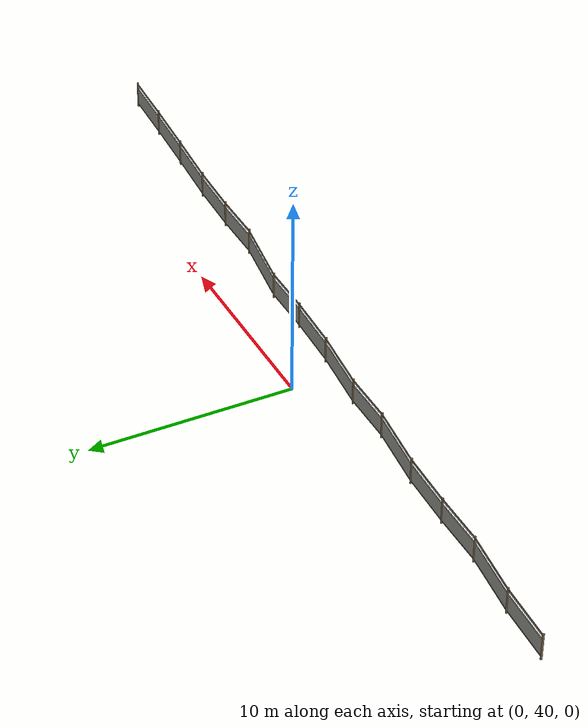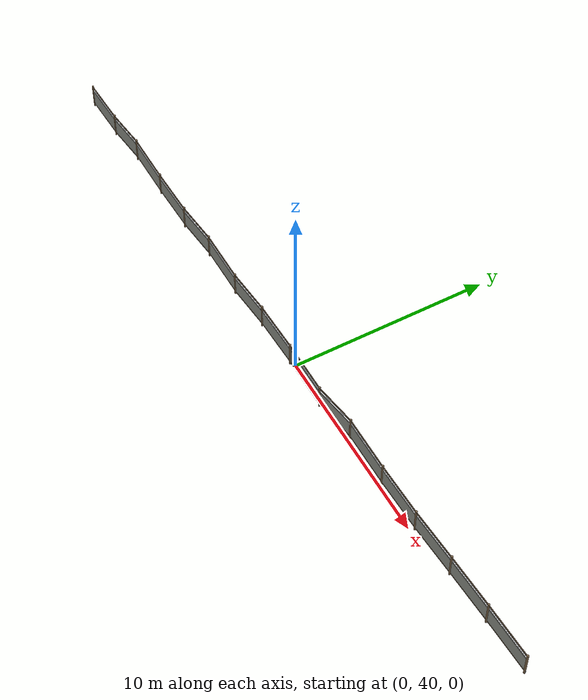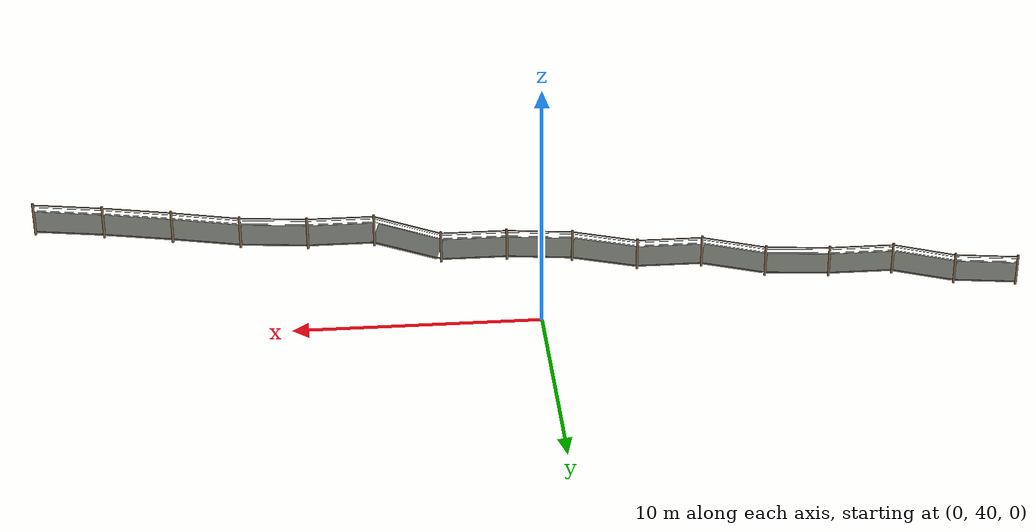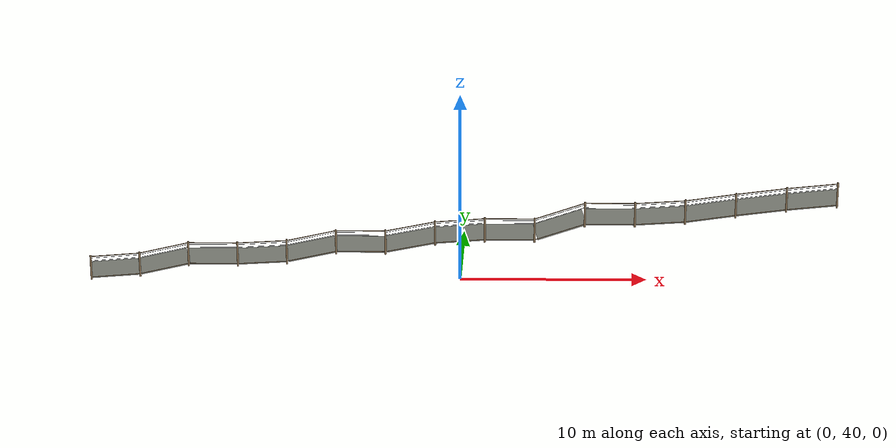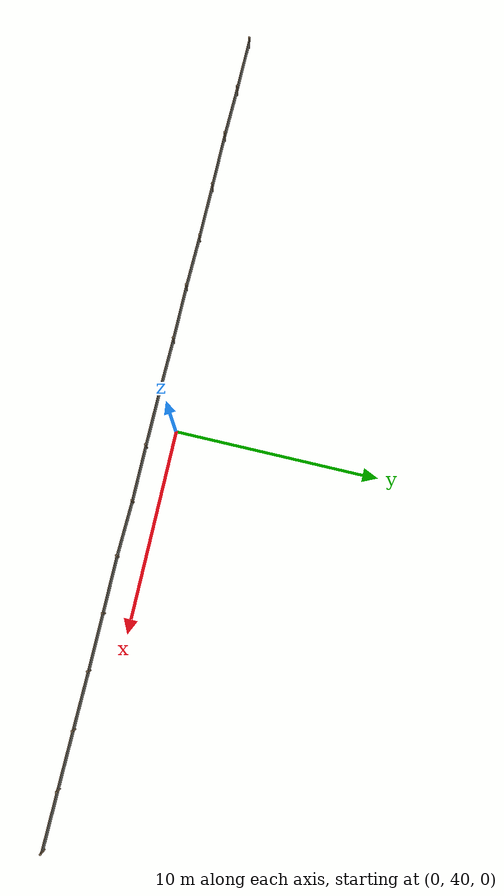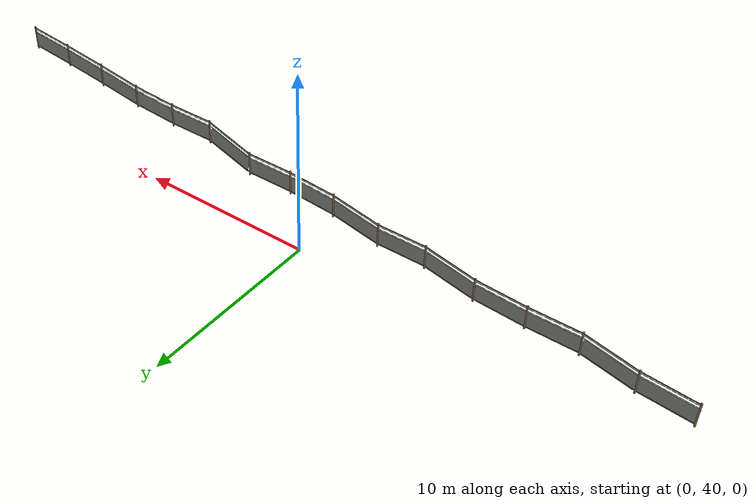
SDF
<sdf version="1.9">
 <world name="orchard_10x41">
  <model name="fence_N">
   <static>true</static>
   <link name="link">
    <visual name="post_1">
     <pose>-19.750 39.000 0.771 0.0000 0.0000 0.0000</pose>
     <geometry><cylinder><radius>0.0500</radius><length>1.3500</length></cylinder></geometry>
     <material>
      <ambient>0.420 0.340 0.240 1</ambient>
      <diffuse>0.462 0.374 0.264 1</diffuse>
      <specular>0.126 0.102 0.072 1</specular>
     </material>
     <plugin filename="gz-sim-label-system" name="gz::sim::systems::Label"><label>60</label></plugin>
    </visual>
    <visual name="post_2">
     <pose>-17.117 39.000 0.981 0.0000 0.0000 0.0000</pose>
     <geometry><cylinder><radius>0.0500</radius><length>1.3500</length></cylinder></geometry>
     <material>
      <ambient>0.420 0.340 0.240 1</ambient>
      <diffuse>0.462 0.374 0.264 1</diffuse>
      <specular>0.126 0.102 0.072 1</specular>
     </material>
     <plugin filename="gz-sim-label-system" name="gz::sim::systems::Label"><label>60</label></plugin>
    </visual>
    <visual name="post_3">
     <pose>-14.483 39.000 1.572 0.0000 0.0000 0.0000</pose>
     <geometry><cylinder><radius>0.0500</radius><length>1.3500</length></cylinder></geometry>
     <material>
      <ambient>0.420 0.340 0.240 1</ambient>
      <diffuse>0.462 0.374 0.264 1</diffuse>
      <specular>0.126 0.102 0.072 1</specular>
     </material>
     <plugin filename="gz-sim-label-system" name="gz::sim::systems::Label"><label>60</label></plugin>
    </visual>
    <visual name="post_4">
     <pose>-11.850 39.000 1.572 0.0000 0.0000 0.0000</pose>
     <geometry><cylinder><radius>0.0500</radius><length>1.3500</length></cylinder></geometry>
     <material>
      <ambient>0.420 0.340 0.240 1</ambient>
      <diffuse>0.462 0.374 0.264 1</diffuse>
      <specular>0.126 0.102 0.072 1</specular>
     </material>
     <plugin filename="gz-sim-label-system" name="gz::sim::systems::Label"><label>60</label></plugin>
    </visual>
    <visual name="post_5">
     <pose>-9.217 39.000 1.723 0.0000 0.0000 0.0000</pose>
     <geometry><cylinder><radius>0.0500</radius><length>1.3500</length></cylinder></geometry>
     <material>
      <ambient>0.420 0.340 0.240 1</ambient>
      <diffuse>0.462 0.374 0.264 1</diffuse>
      <specular>0.126 0.102 0.072 1</specular>
     </material>
     <plugin filename="gz-sim-label-system" name="gz::sim::systems::Label"><label>60</label></plugin>
    </visual>
    <visual name="post_6">
     <pose>-6.583 39.000 2.285 0.0000 0.0000 0.0000</pose>
     <geometry><cylinder><radius>0.0500</radius><length>1.3500</length></cylinder></geometry>
     <material>
      <ambient>0.420 0.340 0.240 1</ambient>
      <diffuse>0.462 0.374 0.264 1</diffuse>
      <specular>0.126 0.102 0.072 1</specular>
     </material>
     <plugin filename="gz-sim-label-system" name="gz::sim::systems::Label"><label>60</label></plugin>
    </visual>
    <visual name="post_7">
     <pose>-3.950 39.000 2.286 0.0000 0.0000 0.0000</pose>
     <geometry><cylinder><radius>0.0500</radius><length>1.3500</length></cylinder></geometry>
     <material>
      <ambient>0.420 0.340 0.240 1</ambient>
      <diffuse>0.462 0.374 0.264 1</diffuse>
      <specular>0.126 0.102 0.072 1</specular>
     </material>
     <plugin filename="gz-sim-label-system" name="gz::sim::systems::Label"><label>60</label></plugin>
    </visual>
    <visual name="post_8">
     <pose>-1.317 39.000 2.797 0.0000 0.0000 0.0000</pose>
     <geometry><cylinder><radius>0.0500</radius><length>1.3500</length></cylinder></geometry>
     <material>
      <ambient>0.420 0.340 0.240 1</ambient>
      <diffuse>0.462 0.374 0.264 1</diffuse>
      <specular>0.126 0.102 0.072 1</specular>
     </material>
     <plugin filename="gz-sim-label-system" name="gz::sim::systems::Label"><label>60</label></plugin>
    </visual>
    <visual name="post_9">
     <pose>1.317 39.000 2.985 0.0000 0.0000 0.0000</pose>
     <geometry><cylinder><radius>0.0500</radius><length>1.3500</length></cylinder></geometry>
     <material>
      <ambient>0.420 0.340 0.240 1</ambient>
      <diffuse>0.462 0.374 0.264 1</diffuse>
      <specular>0.126 0.102 0.072 1</specular>
     </material>
     <plugin filename="gz-sim-label-system" name="gz::sim::systems::Label"><label>60</label></plugin>
    </visual>
    <visual name="post_10">
     <pose>3.950 39.000 2.986 0.0000 0.0000 0.0000</pose>
     <geometry><cylinder><radius>0.0500</radius><length>1.3500</length></cylinder></geometry>
     <material>
      <ambient>0.420 0.340 0.240 1</ambient>
      <diffuse>0.462 0.374 0.264 1</diffuse>
      <specular>0.126 0.102 0.072 1</specular>
     </material>
     <plugin filename="gz-sim-label-system" name="gz::sim::systems::Label"><label>60</label></plugin>
    </visual>
    <visual name="post_11">
     <pose>6.583 39.000 3.855 0.0000 0.0000 0.0000</pose>
     <geometry><cylinder><radius>0.0500</radius><length>1.3500</length></cylinder></geometry>
     <material>
      <ambient>0.420 0.340 0.240 1</ambient>
      <diffuse>0.462 0.374 0.264 1</diffuse>
      <specular>0.126 0.102 0.072 1</specular>
     </material>
     <plugin filename="gz-sim-label-system" name="gz::sim::systems::Label"><label>60</label></plugin>
    </visual>
    <visual name="post_12">
     <pose>9.217 39.000 3.855 0.0000 0.0000 0.0000</pose>
     <geometry><cylinder><radius>0.0500</radius><length>1.3500</length></cylinder></geometry>
     <material>
      <ambient>0.420 0.340 0.240 1</ambient>
      <diffuse>0.462 0.374 0.264 1</diffuse>
      <specular>0.126 0.102 0.072 1</specular>
     </material>
     <plugin filename="gz-sim-label-system" name="gz::sim::systems::Label"><label>60</label></plugin>
    </visual>
    <visual name="post_13">
     <pose>11.850 39.000 4.018 0.0000 0.0000 0.0000</pose>
     <geometry><cylinder><radius>0.0500</radius><length>1.3500</length></cylinder></geometry>
     <material>
      <ambient>0.420 0.340 0.240 1</ambient>
      <diffuse>0.462 0.374 0.264 1</diffuse>
      <specular>0.126 0.102 0.072 1</specular>
     </material>
     <plugin filename="gz-sim-label-system" name="gz::sim::systems::Label"><label>60</label></plugin>
    </visual>
    <visual name="post_14">
     <pose>14.483 39.000 4.386 0.0000 0.0000 0.0000</pose>
     <geometry><cylinder><radius>0.0500</radius><length>1.3500</length></cylinder></geometry>
     <material>
      <ambient>0.420 0.340 0.240 1</ambient>
      <diffuse>0.462 0.374 0.264 1</diffuse>
      <specular>0.126 0.102 0.072 1</specular>
     </material>
     <plugin filename="gz-sim-label-system" name="gz::sim::systems::Label"><label>60</label></plugin>
    </visual>
    <visual name="post_15">
     <pose>17.117 39.000 4.710 0.0000 0.0000 0.0000</pose>
     <geometry><cylinder><radius>0.0500</radius><length>1.3500</length></cylinder></geometry>
     <material>
      <ambient>0.420 0.340 0.240 1</ambient>
      <diffuse>0.462 0.374 0.264 1</diffuse>
      <specular>0.126 0.102 0.072 1</specular>
     </material>
     <plugin filename="gz-sim-label-system" name="gz::sim::systems::Label"><label>60</label></plugin>
    </visual>
    <visual name="post_16">
     <pose>19.750 39.000 4.969 0.0000 0.0000 0.0000</pose>
     <geometry><cylinder><radius>0.0500</radius><length>1.3500</length></cylinder></geometry>
     <material>
      <ambient>0.420 0.340 0.240 1</ambient>
      <diffuse>0.462 0.374 0.264 1</diffuse>
      <specular>0.126 0.102 0.072 1</specular>
     </material>
     <plugin filename="gz-sim-label-system" name="gz::sim::systems::Label"><label>60</label></plugin>
    </visual>
    <visual name="mesh_17">
     <pose>-18.433 39.000 0.751 0.0000 -0.0799 0.0000</pose>
     <geometry><box><size>2.6860 0.0200 0.9000</size></box></geometry>
     <material>
      <ambient>0.460 0.470 0.440 1</ambient>
      <diffuse>0.506 0.517 0.484 1</diffuse>
      <specular>0.138 0.141 0.132 1</specular>
     </material>
     <plugin filename="gz-sim-label-system" name="gz::sim::systems::Label"><label>60</label></plugin>
    </visual>
    <visual name="rail_18">
     <pose>-18.433 39.000 0.351 0.0000 -0.0799 0.0000</pose>
     <geometry><box><size>2.6860 0.0350 0.0350</size></box></geometry>
     <material>
      <ambient>0.380 0.310 0.220 1</ambient>
      <diffuse>0.418 0.341 0.242 1</diffuse>
      <specular>0.114 0.093 0.066 1</specular>
     </material>
     <plugin filename="gz-sim-label-system" name="gz::sim::systems::Label"><label>60</label></plugin>
    </visual>
    <visual name="rail_19">
     <pose>-18.433 39.000 1.481 0.0000 -0.0799 0.0000</pose>
     <geometry><box><size>2.6860 0.0350 0.0350</size></box></geometry>
     <material>
      <ambient>0.380 0.310 0.220 1</ambient>
      <diffuse>0.418 0.341 0.242 1</diffuse>
      <specular>0.114 0.093 0.066 1</specular>
     </material>
     <plugin filename="gz-sim-label-system" name="gz::sim::systems::Label"><label>60</label></plugin>
    </visual>
    <visual name="wire_20">
     <pose>-18.433 39.000 1.251 0.0000 -0.0799 0.0000</pose>
     <geometry><box><size>2.6860 0.0120 0.0120</size></box></geometry>
     <material>
      <ambient>0.300 0.300 0.320 1</ambient>
      <diffuse>0.330 0.330 0.352 1</diffuse>
      <specular>0.090 0.090 0.096 1</specular>
     </material>
     <plugin filename="gz-sim-label-system" name="gz::sim::systems::Label"><label>60</label></plugin>
    </visual>
    <visual name="wire_21">
     <pose>-18.433 39.000 1.391 0.0000 -0.0799 0.0000</pose>
     <geometry><box><size>2.6860 0.0120 0.0120</size></box></geometry>
     <material>
      <ambient>0.300 0.300 0.320 1</ambient>
      <diffuse>0.330 0.330 0.352 1</diffuse>
      <specular>0.090 0.090 0.096 1</specular>
     </material>
     <plugin filename="gz-sim-label-system" name="gz::sim::systems::Label"><label>60</label></plugin>
    </visual>
    <visual name="mesh_22">
     <pose>-15.800 39.000 1.151 0.0000 -0.2205 0.0000</pose>
     <geometry><box><size>2.6860 0.0200 0.9000</size></box></geometry>
     <material>
      <ambient>0.460 0.470 0.440 1</ambient>
      <diffuse>0.506 0.517 0.484 1</diffuse>
      <specular>0.138 0.141 0.132 1</specular>
     </material>
     <plugin filename="gz-sim-label-system" name="gz::sim::systems::Label"><label>60</label></plugin>
    </visual>
    <visual name="rail_23">
     <pose>-15.800 39.000 0.751 0.0000 -0.2205 0.0000</pose>
     <geometry><box><size>2.6860 0.0350 0.0350</size></box></geometry>
     <material>
      <ambient>0.380 0.310 0.220 1</ambient>
      <diffuse>0.418 0.341 0.242 1</diffuse>
      <specular>0.114 0.093 0.066 1</specular>
     </material>
     <plugin filename="gz-sim-label-system" name="gz::sim::systems::Label"><label>60</label></plugin>
    </visual>
    <visual name="rail_24">
     <pose>-15.800 39.000 1.881 0.0000 -0.2205 0.0000</pose>
     <geometry><box><size>2.6860 0.0350 0.0350</size></box></geometry>
     <material>
      <ambient>0.380 0.310 0.220 1</ambient>
      <diffuse>0.418 0.341 0.242 1</diffuse>
      <specular>0.114 0.093 0.066 1</specular>
     </material>
     <plugin filename="gz-sim-label-system" name="gz::sim::systems::Label"><label>60</label></plugin>
    </visual>
    <visual name="wire_25">
     <pose>-15.800 39.000 1.651 0.0000 -0.2205 0.0000</pose>
     <geometry><box><size>2.6860 0.0120 0.0120</size></box></geometry>
     <material>
      <ambient>0.300 0.300 0.320 1</ambient>
      <diffuse>0.330 0.330 0.352 1</diffuse>
      <specular>0.090 0.090 0.096 1</specular>
     </material>
     <plugin filename="gz-sim-label-system" name="gz::sim::systems::Label"><label>60</label></plugin>
    </visual>
    <visual name="wire_26">
     <pose>-15.800 39.000 1.791 0.0000 -0.2205 0.0000</pose>
     <geometry><box><size>2.6860 0.0120 0.0120</size></box></geometry>
     <material>
      <ambient>0.300 0.300 0.320 1</ambient>
      <diffuse>0.330 0.330 0.352 1</diffuse>
      <specular>0.090 0.090 0.096 1</specular>
     </material>
     <plugin filename="gz-sim-label-system" name="gz::sim::systems::Label"><label>60</label></plugin>
    </visual>
    <visual name="mesh_27">
     <pose>-13.167 39.000 1.447 0.0000 -0.0001 0.0000</pose>
     <geometry><box><size>2.6860 0.0200 0.9000</size></box></geometry>
     <material>
      <ambient>0.460 0.470 0.440 1</ambient>
      <diffuse>0.506 0.517 0.484 1</diffuse>
      <specular>0.138 0.141 0.132 1</specular>
     </material>
     <plugin filename="gz-sim-label-system" name="gz::sim::systems::Label"><label>60</label></plugin>
    </visual>
    <visual name="rail_28">
     <pose>-13.167 39.000 1.047 0.0000 -0.0001 0.0000</pose>
     <geometry><box><size>2.6860 0.0350 0.0350</size></box></geometry>
     <material>
      <ambient>0.380 0.310 0.220 1</ambient>
      <diffuse>0.418 0.341 0.242 1</diffuse>
      <specular>0.114 0.093 0.066 1</specular>
     </material>
     <plugin filename="gz-sim-label-system" name="gz::sim::systems::Label"><label>60</label></plugin>
    </visual>
    <visual name="rail_29">
     <pose>-13.167 39.000 2.177 0.0000 -0.0001 0.0000</pose>
     <geometry><box><size>2.6860 0.0350 0.0350</size></box></geometry>
     <material>
      <ambient>0.380 0.310 0.220 1</ambient>
      <diffuse>0.418 0.341 0.242 1</diffuse>
      <specular>0.114 0.093 0.066 1</specular>
     </material>
     <plugin filename="gz-sim-label-system" name="gz::sim::systems::Label"><label>60</label></plugin>
    </visual>
    <visual name="wire_30">
     <pose>-13.167 39.000 1.947 0.0000 -0.0001 0.0000</pose>
     <geometry><box><size>2.6860 0.0120 0.0120</size></box></geometry>
     <material>
      <ambient>0.300 0.300 0.320 1</ambient>
      <diffuse>0.330 0.330 0.352 1</diffuse>
      <specular>0.090 0.090 0.096 1</specular>
     </material>
     <plugin filename="gz-sim-label-system" name="gz::sim::systems::Label"><label>60</label></plugin>
    </visual>
    <visual name="wire_31">
     <pose>-13.167 39.000 2.087 0.0000 -0.0001 0.0000</pose>
     <geometry><box><size>2.6860 0.0120 0.0120</size></box></geometry>
     <material>
      <ambient>0.300 0.300 0.320 1</ambient>
      <diffuse>0.330 0.330 0.352 1</diffuse>
      <specular>0.090 0.090 0.096 1</specular>
     </material>
     <plugin filename="gz-sim-label-system" name="gz::sim::systems::Label"><label>60</label></plugin>
    </visual>
    <visual name="mesh_32">
     <pose>-10.533 39.000 1.522 0.0000 -0.0573 0.0000</pose>
     <geometry><box><size>2.6860 0.0200 0.9000</size></box></geometry>
     <material>
      <ambient>0.460 0.470 0.440 1</ambient>
      <diffuse>0.506 0.517 0.484 1</diffuse>
      <specular>0.138 0.141 0.132 1</specular>
     </material>
     <plugin filename="gz-sim-label-system" name="gz::sim::systems::Label"><label>60</label></plugin>
    </visual>
    <visual name="rail_33">
     <pose>-10.533 39.000 1.122 0.0000 -0.0573 0.0000</pose>
     <geometry><box><size>2.6860 0.0350 0.0350</size></box></geometry>
     <material>
      <ambient>0.380 0.310 0.220 1</ambient>
      <diffuse>0.418 0.341 0.242 1</diffuse>
      <specular>0.114 0.093 0.066 1</specular>
     </material>
     <plugin filename="gz-sim-label-system" name="gz::sim::systems::Label"><label>60</label></plugin>
    </visual>
    <visual name="rail_34">
     <pose>-10.533 39.000 2.252 0.0000 -0.0573 0.0000</pose>
     <geometry><box><size>2.6860 0.0350 0.0350</size></box></geometry>
     <material>
      <ambient>0.380 0.310 0.220 1</ambient>
      <diffuse>0.418 0.341 0.242 1</diffuse>
      <specular>0.114 0.093 0.066 1</specular>
     </material>
     <plugin filename="gz-sim-label-system" name="gz::sim::systems::Label"><label>60</label></plugin>
    </visual>
    <visual name="wire_35">
     <pose>-10.533 39.000 2.022 0.0000 -0.0573 0.0000</pose>
     <geometry><box><size>2.6860 0.0120 0.0120</size></box></geometry>
     <material>
      <ambient>0.300 0.300 0.320 1</ambient>
      <diffuse>0.330 0.330 0.352 1</diffuse>
      <specular>0.090 0.090 0.096 1</specular>
     </material>
     <plugin filename="gz-sim-label-system" name="gz::sim::systems::Label"><label>60</label></plugin>
    </visual>
    <visual name="wire_36">
     <pose>-10.533 39.000 2.162 0.0000 -0.0573 0.0000</pose>
     <geometry><box><size>2.6860 0.0120 0.0120</size></box></geometry>
     <material>
      <ambient>0.300 0.300 0.320 1</ambient>
      <diffuse>0.330 0.330 0.352 1</diffuse>
      <specular>0.090 0.090 0.096 1</specular>
     </material>
     <plugin filename="gz-sim-label-system" name="gz::sim::systems::Label"><label>60</label></plugin>
    </visual>
    <visual name="mesh_37">
     <pose>-7.900 39.000 1.879 0.0000 -0.2102 0.0000</pose>
     <geometry><box><size>2.6860 0.0200 0.9000</size></box></geometry>
     <material>
      <ambient>0.460 0.470 0.440 1</ambient>
      <diffuse>0.506 0.517 0.484 1</diffuse>
      <specular>0.138 0.141 0.132 1</specular>
     </material>
     <plugin filename="gz-sim-label-system" name="gz::sim::systems::Label"><label>60</label></plugin>
    </visual>
    <visual name="rail_38">
     <pose>-7.900 39.000 1.479 0.0000 -0.2102 0.0000</pose>
     <geometry><box><size>2.6860 0.0350 0.0350</size></box></geometry>
     <material>
      <ambient>0.380 0.310 0.220 1</ambient>
      <diffuse>0.418 0.341 0.242 1</diffuse>
      <specular>0.114 0.093 0.066 1</specular>
     </material>
     <plugin filename="gz-sim-label-system" name="gz::sim::systems::Label"><label>60</label></plugin>
    </visual>
    <visual name="rail_39">
     <pose>-7.900 39.000 2.609 0.0000 -0.2102 0.0000</pose>
     <geometry><box><size>2.6860 0.0350 0.0350</size></box></geometry>
     <material>
      <ambient>0.380 0.310 0.220 1</ambient>
      <diffuse>0.418 0.341 0.242 1</diffuse>
      <specular>0.114 0.093 0.066 1</specular>
     </material>
     <plugin filename="gz-sim-label-system" name="gz::sim::systems::Label"><label>60</label></plugin>
    </visual>
    <visual name="wire_40">
     <pose>-7.900 39.000 2.379 0.0000 -0.2102 0.0000</pose>
     <geometry><box><size>2.6860 0.0120 0.0120</size></box></geometry>
     <material>
      <ambient>0.300 0.300 0.320 1</ambient>
      <diffuse>0.330 0.330 0.352 1</diffuse>
      <specular>0.090 0.090 0.096 1</specular>
     </material>
     <plugin filename="gz-sim-label-system" name="gz::sim::systems::Label"><label>60</label></plugin>
    </visual>
    <visual name="wire_41">
     <pose>-7.900 39.000 2.519 0.0000 -0.2102 0.0000</pose>
     <geometry><box><size>2.6860 0.0120 0.0120</size></box></geometry>
     <material>
      <ambient>0.300 0.300 0.320 1</ambient>
      <diffuse>0.330 0.330 0.352 1</diffuse>
      <specular>0.090 0.090 0.096 1</specular>
     </material>
     <plugin filename="gz-sim-label-system" name="gz::sim::systems::Label"><label>60</label></plugin>
    </visual>
    <visual name="mesh_42">
     <pose>-5.267 39.000 2.160 0.0000 -0.0004 0.0000</pose>
     <geometry><box><size>2.6860 0.0200 0.9000</size></box></geometry>
     <material>
      <ambient>0.460 0.470 0.440 1</ambient>
      <diffuse>0.506 0.517 0.484 1</diffuse>
      <specular>0.138 0.141 0.132 1</specular>
     </material>
     <plugin filename="gz-sim-label-system" name="gz::sim::systems::Label"><label>60</label></plugin>
    </visual>
    <visual name="rail_43">
     <pose>-5.267 39.000 1.760 0.0000 -0.0004 0.0000</pose>
     <geometry><box><size>2.6860 0.0350 0.0350</size></box></geometry>
     <material>
      <ambient>0.380 0.310 0.220 1</ambient>
      <diffuse>0.418 0.341 0.242 1</diffuse>
      <specular>0.114 0.093 0.066 1</specular>
     </material>
     <plugin filename="gz-sim-label-system" name="gz::sim::systems::Label"><label>60</label></plugin>
    </visual>
    <visual name="rail_44">
     <pose>-5.267 39.000 2.890 0.0000 -0.0004 0.0000</pose>
     <geometry><box><size>2.6860 0.0350 0.0350</size></box></geometry>
     <material>
      <ambient>0.380 0.310 0.220 1</ambient>
      <diffuse>0.418 0.341 0.242 1</diffuse>
      <specular>0.114 0.093 0.066 1</specular>
     </material>
     <plugin filename="gz-sim-label-system" name="gz::sim::systems::Label"><label>60</label></plugin>
    </visual>
    <visual name="wire_45">
     <pose>-5.267 39.000 2.660 0.0000 -0.0004 0.0000</pose>
     <geometry><box><size>2.6860 0.0120 0.0120</size></box></geometry>
     <material>
      <ambient>0.300 0.300 0.320 1</ambient>
      <diffuse>0.330 0.330 0.352 1</diffuse>
      <specular>0.090 0.090 0.096 1</specular>
     </material>
     <plugin filename="gz-sim-label-system" name="gz::sim::systems::Label"><label>60</label></plugin>
    </visual>
    <visual name="wire_46">
     <pose>-5.267 39.000 2.800 0.0000 -0.0004 0.0000</pose>
     <geometry><box><size>2.6860 0.0120 0.0120</size></box></geometry>
     <material>
      <ambient>0.300 0.300 0.320 1</ambient>
      <diffuse>0.330 0.330 0.352 1</diffuse>
      <specular>0.090 0.090 0.096 1</specular>
     </material>
     <plugin filename="gz-sim-label-system" name="gz::sim::systems::Label"><label>60</label></plugin>
    </visual>
    <visual name="mesh_47">
     <pose>-2.633 39.000 2.416 0.0000 -0.1918 0.0000</pose>
     <geometry><box><size>2.6860 0.0200 0.9000</size></box></geometry>
     <material>
      <ambient>0.460 0.470 0.440 1</ambient>
      <diffuse>0.506 0.517 0.484 1</diffuse>
      <specular>0.138 0.141 0.132 1</specular>
     </material>
     <plugin filename="gz-sim-label-system" name="gz::sim::systems::Label"><label>60</label></plugin>
    </visual>
    <visual name="rail_48">
     <pose>-2.633 39.000 2.016 0.0000 -0.1918 0.0000</pose>
     <geometry><box><size>2.6860 0.0350 0.0350</size></box></geometry>
     <material>
      <ambient>0.380 0.310 0.220 1</ambient>
      <diffuse>0.418 0.341 0.242 1</diffuse>
      <specular>0.114 0.093 0.066 1</specular>
     </material>
     <plugin filename="gz-sim-label-system" name="gz::sim::systems::Label"><label>60</label></plugin>
    </visual>
    <visual name="rail_49">
     <pose>-2.633 39.000 3.146 0.0000 -0.1918 0.0000</pose>
     <geometry><box><size>2.6860 0.0350 0.0350</size></box></geometry>
     <material>
      <ambient>0.380 0.310 0.220 1</ambient>
      <diffuse>0.418 0.341 0.242 1</diffuse>
      <specular>0.114 0.093 0.066 1</specular>
     </material>
     <plugin filename="gz-sim-label-system" name="gz::sim::systems::Label"><label>60</label></plugin>
    </visual>
    <visual name="wire_50">
     <pose>-2.633 39.000 2.916 0.0000 -0.1918 0.0000</pose>
     <geometry><box><size>2.6860 0.0120 0.0120</size></box></geometry>
     <material>
      <ambient>0.300 0.300 0.320 1</ambient>
      <diffuse>0.330 0.330 0.352 1</diffuse>
      <specular>0.090 0.090 0.096 1</specular>
     </material>
     <plugin filename="gz-sim-label-system" name="gz::sim::systems::Label"><label>60</label></plugin>
    </visual>
    <visual name="wire_51">
     <pose>-2.633 39.000 3.056 0.0000 -0.1918 0.0000</pose>
     <geometry><box><size>2.6860 0.0120 0.0120</size></box></geometry>
     <material>
      <ambient>0.300 0.300 0.320 1</ambient>
      <diffuse>0.330 0.330 0.352 1</diffuse>
      <specular>0.090 0.090 0.096 1</specular>
     </material>
     <plugin filename="gz-sim-label-system" name="gz::sim::systems::Label"><label>60</label></plugin>
    </visual>
    <visual name="mesh_52">
     <pose>0.000 39.000 2.766 0.0000 -0.0712 0.0000</pose>
     <geometry><box><size>2.6860 0.0200 0.9000</size></box></geometry>
     <material>
      <ambient>0.460 0.470 0.440 1</ambient>
      <diffuse>0.506 0.517 0.484 1</diffuse>
      <specular>0.138 0.141 0.132 1</specular>
     </material>
     <plugin filename="gz-sim-label-system" name="gz::sim::systems::Label"><label>60</label></plugin>
    </visual>
    <visual name="rail_53">
     <pose>0.000 39.000 2.366 0.0000 -0.0712 0.0000</pose>
     <geometry><box><size>2.6860 0.0350 0.0350</size></box></geometry>
     <material>
      <ambient>0.380 0.310 0.220 1</ambient>
      <diffuse>0.418 0.341 0.242 1</diffuse>
      <specular>0.114 0.093 0.066 1</specular>
     </material>
     <plugin filename="gz-sim-label-system" name="gz::sim::systems::Label"><label>60</label></plugin>
    </visual>
    <visual name="rail_54">
     <pose>0.000 39.000 3.496 0.0000 -0.0712 0.0000</pose>
     <geometry><box><size>2.6860 0.0350 0.0350</size></box></geometry>
     <material>
      <ambient>0.380 0.310 0.220 1</ambient>
      <diffuse>0.418 0.341 0.242 1</diffuse>
      <specular>0.114 0.093 0.066 1</specular>
     </material>
     <plugin filename="gz-sim-label-system" name="gz::sim::systems::Label"><label>60</label></plugin>
    </visual>
    <visual name="wire_55">
     <pose>0.000 39.000 3.266 0.0000 -0.0712 0.0000</pose>
     <geometry><box><size>2.6860 0.0120 0.0120</size></box></geometry>
     <material>
      <ambient>0.300 0.300 0.320 1</ambient>
      <diffuse>0.330 0.330 0.352 1</diffuse>
      <specular>0.090 0.090 0.096 1</specular>
     </material>
     <plugin filename="gz-sim-label-system" name="gz::sim::systems::Label"><label>60</label></plugin>
    </visual>
    <visual name="wire_56">
     <pose>0.000 39.000 3.406 0.0000 -0.0712 0.0000</pose>
     <geometry><box><size>2.6860 0.0120 0.0120</size></box></geometry>
     <material>
      <ambient>0.300 0.300 0.320 1</ambient>
      <diffuse>0.330 0.330 0.352 1</diffuse>
      <specular>0.090 0.090 0.096 1</specular>
     </material>
     <plugin filename="gz-sim-label-system" name="gz::sim::systems::Label"><label>60</label></plugin>
    </visual>
    <visual name="mesh_57">
     <pose>2.633 39.000 2.860 0.0000 -0.0004 0.0000</pose>
     <geometry><box><size>2.6860 0.0200 0.9000</size></box></geometry>
     <material>
      <ambient>0.460 0.470 0.440 1</ambient>
      <diffuse>0.506 0.517 0.484 1</diffuse>
      <specular>0.138 0.141 0.132 1</specular>
     </material>
     <plugin filename="gz-sim-label-system" name="gz::sim::systems::Label"><label>60</label></plugin>
    </visual>
    <visual name="rail_58">
     <pose>2.633 39.000 2.460 0.0000 -0.0004 0.0000</pose>
     <geometry><box><size>2.6860 0.0350 0.0350</size></box></geometry>
     <material>
      <ambient>0.380 0.310 0.220 1</ambient>
      <diffuse>0.418 0.341 0.242 1</diffuse>
      <specular>0.114 0.093 0.066 1</specular>
     </material>
     <plugin filename="gz-sim-label-system" name="gz::sim::systems::Label"><label>60</label></plugin>
    </visual>
    <visual name="rail_59">
     <pose>2.633 39.000 3.590 0.0000 -0.0004 0.0000</pose>
     <geometry><box><size>2.6860 0.0350 0.0350</size></box></geometry>
     <material>
      <ambient>0.380 0.310 0.220 1</ambient>
      <diffuse>0.418 0.341 0.242 1</diffuse>
      <specular>0.114 0.093 0.066 1</specular>
     </material>
     <plugin filename="gz-sim-label-system" name="gz::sim::systems::Label"><label>60</label></plugin>
    </visual>
    <visual name="wire_60">
     <pose>2.633 39.000 3.360 0.0000 -0.0004 0.0000</pose>
     <geometry><box><size>2.6860 0.0120 0.0120</size></box></geometry>
     <material>
      <ambient>0.300 0.300 0.320 1</ambient>
      <diffuse>0.330 0.330 0.352 1</diffuse>
      <specular>0.090 0.090 0.096 1</specular>
     </material>
     <plugin filename="gz-sim-label-system" name="gz::sim::systems::Label"><label>60</label></plugin>
    </visual>
    <visual name="wire_61">
     <pose>2.633 39.000 3.500 0.0000 -0.0004 0.0000</pose>
     <geometry><box><size>2.6860 0.0120 0.0120</size></box></geometry>
     <material>
      <ambient>0.300 0.300 0.320 1</ambient>
      <diffuse>0.330 0.330 0.352 1</diffuse>
      <specular>0.090 0.090 0.096 1</specular>
     </material>
     <plugin filename="gz-sim-label-system" name="gz::sim::systems::Label"><label>60</label></plugin>
    </visual>
    <visual name="mesh_62">
     <pose>5.267 39.000 3.295 0.0000 -0.3187 0.0000</pose>
     <geometry><box><size>2.6860 0.0200 0.9000</size></box></geometry>
     <material>
      <ambient>0.460 0.470 0.440 1</ambient>
      <diffuse>0.506 0.517 0.484 1</diffuse>
      <specular>0.138 0.141 0.132 1</specular>
     </material>
     <plugin filename="gz-sim-label-system" name="gz::sim::systems::Label"><label>60</label></plugin>
    </visual>
    <visual name="rail_63">
     <pose>5.267 39.000 2.895 0.0000 -0.3187 0.0000</pose>
     <geometry><box><size>2.6860 0.0350 0.0350</size></box></geometry>
     <material>
      <ambient>0.380 0.310 0.220 1</ambient>
      <diffuse>0.418 0.341 0.242 1</diffuse>
      <specular>0.114 0.093 0.066 1</specular>
     </material>
     <plugin filename="gz-sim-label-system" name="gz::sim::systems::Label"><label>60</label></plugin>
    </visual>
    <visual name="rail_64">
     <pose>5.267 39.000 4.025 0.0000 -0.3187 0.0000</pose>
     <geometry><box><size>2.6860 0.0350 0.0350</size></box></geometry>
     <material>
      <ambient>0.380 0.310 0.220 1</ambient>
      <diffuse>0.418 0.341 0.242 1</diffuse>
      <specular>0.114 0.093 0.066 1</specular>
     </material>
     <plugin filename="gz-sim-label-system" name="gz::sim::systems::Label"><label>60</label></plugin>
    </visual>
    <visual name="wire_65">
     <pose>5.267 39.000 3.795 0.0000 -0.3187 0.0000</pose>
     <geometry><box><size>2.6860 0.0120 0.0120</size></box></geometry>
     <material>
      <ambient>0.300 0.300 0.320 1</ambient>
      <diffuse>0.330 0.330 0.352 1</diffuse>
      <specular>0.090 0.090 0.096 1</specular>
     </material>
     <plugin filename="gz-sim-label-system" name="gz::sim::systems::Label"><label>60</label></plugin>
    </visual>
    <visual name="wire_66">
     <pose>5.267 39.000 3.935 0.0000 -0.3187 0.0000</pose>
     <geometry><box><size>2.6860 0.0120 0.0120</size></box></geometry>
     <material>
      <ambient>0.300 0.300 0.320 1</ambient>
      <diffuse>0.330 0.330 0.352 1</diffuse>
      <specular>0.090 0.090 0.096 1</specular>
     </material>
     <plugin filename="gz-sim-label-system" name="gz::sim::systems::Label"><label>60</label></plugin>
    </visual>
    <visual name="mesh_67">
     <pose>7.900 39.000 3.730 0.0000 -0.0001 0.0000</pose>
     <geometry><box><size>2.6860 0.0200 0.9000</size></box></geometry>
     <material>
      <ambient>0.460 0.470 0.440 1</ambient>
      <diffuse>0.506 0.517 0.484 1</diffuse>
      <specular>0.138 0.141 0.132 1</specular>
     </material>
     <plugin filename="gz-sim-label-system" name="gz::sim::systems::Label"><label>60</label></plugin>
    </visual>
    <visual name="rail_68">
     <pose>7.900 39.000 3.330 0.0000 -0.0001 0.0000</pose>
     <geometry><box><size>2.6860 0.0350 0.0350</size></box></geometry>
     <material>
      <ambient>0.380 0.310 0.220 1</ambient>
      <diffuse>0.418 0.341 0.242 1</diffuse>
      <specular>0.114 0.093 0.066 1</specular>
     </material>
     <plugin filename="gz-sim-label-system" name="gz::sim::systems::Label"><label>60</label></plugin>
    </visual>
    <visual name="rail_69">
     <pose>7.900 39.000 4.460 0.0000 -0.0001 0.0000</pose>
     <geometry><box><size>2.6860 0.0350 0.0350</size></box></geometry>
     <material>
      <ambient>0.380 0.310 0.220 1</ambient>
      <diffuse>0.418 0.341 0.242 1</diffuse>
      <specular>0.114 0.093 0.066 1</specular>
     </material>
     <plugin filename="gz-sim-label-system" name="gz::sim::systems::Label"><label>60</label></plugin>
    </visual>
    <visual name="wire_70">
     <pose>7.900 39.000 4.230 0.0000 -0.0001 0.0000</pose>
     <geometry><box><size>2.6860 0.0120 0.0120</size></box></geometry>
     <material>
      <ambient>0.300 0.300 0.320 1</ambient>
      <diffuse>0.330 0.330 0.352 1</diffuse>
      <specular>0.090 0.090 0.096 1</specular>
     </material>
     <plugin filename="gz-sim-label-system" name="gz::sim::systems::Label"><label>60</label></plugin>
    </visual>
    <visual name="wire_71">
     <pose>7.900 39.000 4.370 0.0000 -0.0001 0.0000</pose>
     <geometry><box><size>2.6860 0.0120 0.0120</size></box></geometry>
     <material>
      <ambient>0.300 0.300 0.320 1</ambient>
      <diffuse>0.330 0.330 0.352 1</diffuse>
      <specular>0.090 0.090 0.096 1</specular>
     </material>
     <plugin filename="gz-sim-label-system" name="gz::sim::systems::Label"><label>60</label></plugin>
    </visual>
    <visual name="mesh_72">
     <pose>10.533 39.000 3.811 0.0000 -0.0619 0.0000</pose>
     <geometry><box><size>2.6860 0.0200 0.9000</size></box></geometry>
     <material>
      <ambient>0.460 0.470 0.440 1</ambient>
      <diffuse>0.506 0.517 0.484 1</diffuse>
      <specular>0.138 0.141 0.132 1</specular>
     </material>
     <plugin filename="gz-sim-label-system" name="gz::sim::systems::Label"><label>60</label></plugin>
    </visual>
    <visual name="rail_73">
     <pose>10.533 39.000 3.411 0.0000 -0.0619 0.0000</pose>
     <geometry><box><size>2.6860 0.0350 0.0350</size></box></geometry>
     <material>
      <ambient>0.380 0.310 0.220 1</ambient>
      <diffuse>0.418 0.341 0.242 1</diffuse>
      <specular>0.114 0.093 0.066 1</specular>
     </material>
     <plugin filename="gz-sim-label-system" name="gz::sim::systems::Label"><label>60</label></plugin>
    </visual>
    <visual name="rail_74">
     <pose>10.533 39.000 4.541 0.0000 -0.0619 0.0000</pose>
     <geometry><box><size>2.6860 0.0350 0.0350</size></box></geometry>
     <material>
      <ambient>0.380 0.310 0.220 1</ambient>
      <diffuse>0.418 0.341 0.242 1</diffuse>
      <specular>0.114 0.093 0.066 1</specular>
     </material>
     <plugin filename="gz-sim-label-system" name="gz::sim::systems::Label"><label>60</label></plugin>
    </visual>
    <visual name="wire_75">
     <pose>10.533 39.000 4.311 0.0000 -0.0619 0.0000</pose>
     <geometry><box><size>2.6860 0.0120 0.0120</size></box></geometry>
     <material>
      <ambient>0.300 0.300 0.320 1</ambient>
      <diffuse>0.330 0.330 0.352 1</diffuse>
      <specular>0.090 0.090 0.096 1</specular>
     </material>
     <plugin filename="gz-sim-label-system" name="gz::sim::systems::Label"><label>60</label></plugin>
    </visual>
    <visual name="wire_76">
     <pose>10.533 39.000 4.451 0.0000 -0.0619 0.0000</pose>
     <geometry><box><size>2.6860 0.0120 0.0120</size></box></geometry>
     <material>
      <ambient>0.300 0.300 0.320 1</ambient>
      <diffuse>0.330 0.330 0.352 1</diffuse>
      <specular>0.090 0.090 0.096 1</specular>
     </material>
     <plugin filename="gz-sim-label-system" name="gz::sim::systems::Label"><label>60</label></plugin>
    </visual>
    <visual name="mesh_77">
     <pose>13.167 39.000 4.077 0.0000 -0.1388 0.0000</pose>
     <geometry><box><size>2.6860 0.0200 0.9000</size></box></geometry>
     <material>
      <ambient>0.460 0.470 0.440 1</ambient>
      <diffuse>0.506 0.517 0.484 1</diffuse>
      <specular>0.138 0.141 0.132 1</specular>
     </material>
     <plugin filename="gz-sim-label-system" name="gz::sim::systems::Label"><label>60</label></plugin>
    </visual>
    <visual name="rail_78">
     <pose>13.167 39.000 3.677 0.0000 -0.1388 0.0000</pose>
     <geometry><box><size>2.6860 0.0350 0.0350</size></box></geometry>
     <material>
      <ambient>0.380 0.310 0.220 1</ambient>
      <diffuse>0.418 0.341 0.242 1</diffuse>
      <specular>0.114 0.093 0.066 1</specular>
     </material>
     <plugin filename="gz-sim-label-system" name="gz::sim::systems::Label"><label>60</label></plugin>
    </visual>
    <visual name="rail_79">
     <pose>13.167 39.000 4.807 0.0000 -0.1388 0.0000</pose>
     <geometry><box><size>2.6860 0.0350 0.0350</size></box></geometry>
     <material>
      <ambient>0.380 0.310 0.220 1</ambient>
      <diffuse>0.418 0.341 0.242 1</diffuse>
      <specular>0.114 0.093 0.066 1</specular>
     </material>
     <plugin filename="gz-sim-label-system" name="gz::sim::systems::Label"><label>60</label></plugin>
    </visual>
    <visual name="wire_80">
     <pose>13.167 39.000 4.577 0.0000 -0.1388 0.0000</pose>
     <geometry><box><size>2.6860 0.0120 0.0120</size></box></geometry>
     <material>
      <ambient>0.300 0.300 0.320 1</ambient>
      <diffuse>0.330 0.330 0.352 1</diffuse>
      <specular>0.090 0.090 0.096 1</specular>
     </material>
     <plugin filename="gz-sim-label-system" name="gz::sim::systems::Label"><label>60</label></plugin>
    </visual>
    <visual name="wire_81">
     <pose>13.167 39.000 4.717 0.0000 -0.1388 0.0000</pose>
     <geometry><box><size>2.6860 0.0120 0.0120</size></box></geometry>
     <material>
      <ambient>0.300 0.300 0.320 1</ambient>
      <diffuse>0.330 0.330 0.352 1</diffuse>
      <specular>0.090 0.090 0.096 1</specular>
     </material>
     <plugin filename="gz-sim-label-system" name="gz::sim::systems::Label"><label>60</label></plugin>
    </visual>
    <visual name="mesh_82">
     <pose>15.800 39.000 4.423 0.0000 -0.1226 0.0000</pose>
     <geometry><box><size>2.6860 0.0200 0.9000</size></box></geometry>
     <material>
      <ambient>0.460 0.470 0.440 1</ambient>
      <diffuse>0.506 0.517 0.484 1</diffuse>
      <specular>0.138 0.141 0.132 1</specular>
     </material>
     <plugin filename="gz-sim-label-system" name="gz::sim::systems::Label"><label>60</label></plugin>
    </visual>
    <visual name="rail_83">
     <pose>15.800 39.000 4.023 0.0000 -0.1226 0.0000</pose>
     <geometry><box><size>2.6860 0.0350 0.0350</size></box></geometry>
     <material>
      <ambient>0.380 0.310 0.220 1</ambient>
      <diffuse>0.418 0.341 0.242 1</diffuse>
      <specular>0.114 0.093 0.066 1</specular>
     </material>
     <plugin filename="gz-sim-label-system" name="gz::sim::systems::Label"><label>60</label></plugin>
    </visual>
    <visual name="rail_84">
     <pose>15.800 39.000 5.153 0.0000 -0.1226 0.0000</pose>
     <geometry><box><size>2.6860 0.0350 0.0350</size></box></geometry>
     <material>
      <ambient>0.380 0.310 0.220 1</ambient>
      <diffuse>0.418 0.341 0.242 1</diffuse>
      <specular>0.114 0.093 0.066 1</specular>
     </material>
     <plugin filename="gz-sim-label-system" name="gz::sim::systems::Label"><label>60</label></plugin>
    </visual>
    <visual name="wire_85">
     <pose>15.800 39.000 4.923 0.0000 -0.1226 0.0000</pose>
     <geometry><box><size>2.6860 0.0120 0.0120</size></box></geometry>
     <material>
      <ambient>0.300 0.300 0.320 1</ambient>
      <diffuse>0.330 0.330 0.352 1</diffuse>
      <specular>0.090 0.090 0.096 1</specular>
     </material>
     <plugin filename="gz-sim-label-system" name="gz::sim::systems::Label"><label>60</label></plugin>
    </visual>
    <visual name="wire_86">
     <pose>15.800 39.000 5.063 0.0000 -0.1226 0.0000</pose>
     <geometry><box><size>2.6860 0.0120 0.0120</size></box></geometry>
     <material>
      <ambient>0.300 0.300 0.320 1</ambient>
      <diffuse>0.330 0.330 0.352 1</diffuse>
      <specular>0.090 0.090 0.096 1</specular>
     </material>
     <plugin filename="gz-sim-label-system" name="gz::sim::systems::Label"><label>60</label></plugin>
    </visual>
    <visual name="mesh_87">
     <pose>18.433 39.000 4.714 0.0000 -0.0978 0.0000</pose>
     <geometry><box><size>2.6860 0.0200 0.9000</size></box></geometry>
     <material>
      <ambient>0.460 0.470 0.440 1</ambient>
      <diffuse>0.506 0.517 0.484 1</diffuse>
      <specular>0.138 0.141 0.132 1</specular>
     </material>
     <plugin filename="gz-sim-label-system" name="gz::sim::systems::Label"><label>60</label></plugin>
    </visual>
    <visual name="rail_88">
     <pose>18.433 39.000 4.314 0.0000 -0.0978 0.0000</pose>
     <geometry><box><size>2.6860 0.0350 0.0350</size></box></geometry>
     <material>
      <ambient>0.380 0.310 0.220 1</ambient>
      <diffuse>0.418 0.341 0.242 1</diffuse>
      <specular>0.114 0.093 0.066 1</specular>
     </material>
     <plugin filename="gz-sim-label-system" name="gz::sim::systems::Label"><label>60</label></plugin>
    </visual>
    <visual name="rail_89">
     <pose>18.433 39.000 5.444 0.0000 -0.0978 0.0000</pose>
     <geometry><box><size>2.6860 0.0350 0.0350</size></box></geometry>
     <material>
      <ambient>0.380 0.310 0.220 1</ambient>
      <diffuse>0.418 0.341 0.242 1</diffuse>
      <specular>0.114 0.093 0.066 1</specular>
     </material>
     <plugin filename="gz-sim-label-system" name="gz::sim::systems::Label"><label>60</label></plugin>
    </visual>
    <visual name="wire_90">
     <pose>18.433 39.000 5.214 0.0000 -0.0978 0.0000</pose>
     <geometry><box><size>2.6860 0.0120 0.0120</size></box></geometry>
     <material>
      <ambient>0.300 0.300 0.320 1</ambient>
      <diffuse>0.330 0.330 0.352 1</diffuse>
      <specular>0.090 0.090 0.096 1</specular>
     </material>
     <plugin filename="gz-sim-label-system" name="gz::sim::systems::Label"><label>60</label></plugin>
    </visual>
    <visual name="wire_91">
     <pose>18.433 39.000 5.354 0.0000 -0.0978 0.0000</pose>
     <geometry><box><size>2.6860 0.0120 0.0120</size></box></geometry>
     <material>
      <ambient>0.300 0.300 0.320 1</ambient>
      <diffuse>0.330 0.330 0.352 1</diffuse>
      <specular>0.090 0.090 0.096 1</specular>
     </material>
     <plugin filename="gz-sim-label-system" name="gz::sim::systems::Label"><label>60</label></plugin>
    </visual>
    <collision name="c0">
     <pose>-18.433 39.000 0.876 0.0000 -0.0799 0.0000</pose>
     <geometry><box><size>2.6333 0.0600 1.3500</size></box></geometry>
    </collision>
    <collision name="c1">
     <pose>-15.800 39.000 1.276 0.0000 -0.2205 0.0000</pose>
     <geometry><box><size>2.6333 0.0600 1.3500</size></box></geometry>
    </collision>
    <collision name="c2">
     <pose>-13.167 39.000 1.572 0.0000 -0.0001 0.0000</pose>
     <geometry><box><size>2.6333 0.0600 1.3500</size></box></geometry>
    </collision>
    <collision name="c3">
     <pose>-10.533 39.000 1.647 0.0000 -0.0573 0.0000</pose>
     <geometry><box><size>2.6333 0.0600 1.3500</size></box></geometry>
    </collision>
    <collision name="c4">
     <pose>-7.900 39.000 2.004 0.0000 -0.2102 0.0000</pose>
     <geometry><box><size>2.6333 0.0600 1.3500</size></box></geometry>
    </collision>
    <collision name="c5">
     <pose>-5.267 39.000 2.285 0.0000 -0.0004 0.0000</pose>
     <geometry><box><size>2.6333 0.0600 1.3500</size></box></geometry>
    </collision>
    <collision name="c6">
     <pose>-2.633 39.000 2.541 0.0000 -0.1918 0.0000</pose>
     <geometry><box><size>2.6333 0.0600 1.3500</size></box></geometry>
    </collision>
    <collision name="c7">
     <pose>0.000 39.000 2.891 0.0000 -0.0712 0.0000</pose>
     <geometry><box><size>2.6333 0.0600 1.3500</size></box></geometry>
    </collision>
    <collision name="c8">
     <pose>2.633 39.000 2.985 0.0000 -0.0004 0.0000</pose>
     <geometry><box><size>2.6333 0.0600 1.3500</size></box></geometry>
    </collision>
    <collision name="c9">
     <pose>5.267 39.000 3.420 0.0000 -0.3187 0.0000</pose>
     <geometry><box><size>2.6333 0.0600 1.3500</size></box></geometry>
    </collision>
    <collision name="c10">
     <pose>7.900 39.000 3.855 0.0000 -0.0001 0.0000</pose>
     <geometry><box><size>2.6333 0.0600 1.3500</size></box></geometry>
    </collision>
    <collision name="c11">
     <pose>10.533 39.000 3.936 0.0000 -0.0619 0.0000</pose>
     <geometry><box><size>2.6333 0.0600 1.3500</size></box></geometry>
    </collision>
    <collision name="c12">
     <pose>13.167 39.000 4.202 0.0000 -0.1388 0.0000</pose>
     <geometry><box><size>2.6333 0.0600 1.3500</size></box></geometry>
    </collision>
    <collision name="c13">
     <pose>15.800 39.000 4.548 0.0000 -0.1226 0.0000</pose>
     <geometry><box><size>2.6333 0.0600 1.3500</size></box></geometry>
    </collision>
    <collision name="c14">
     <pose>18.433 39.000 4.839 0.0000 -0.0978 0.0000</pose>
     <geometry><box><size>2.6333 0.0600 1.3500</size></box></geometry>
    </collision>
   </link>
  </model>
 </world>
</sdf>
